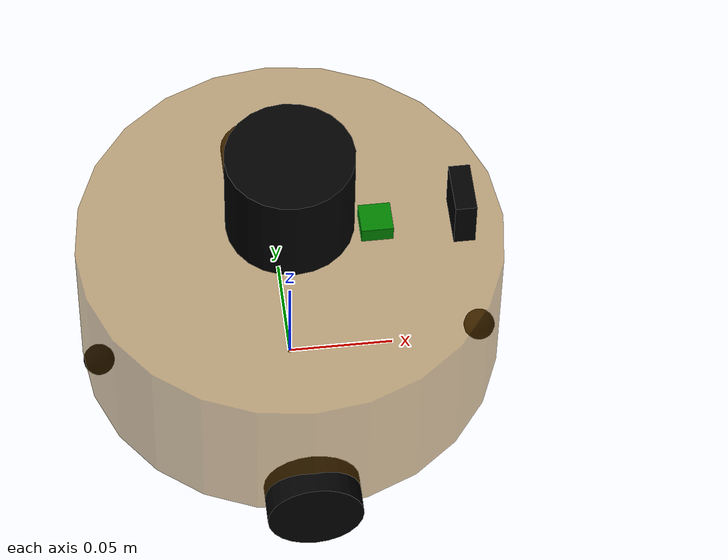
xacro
<!-- 组合小车底盘与摄像头与雷达 -->
<robot name="my_car_camera" xmlns:xacro="http://wiki.ros.org/xacro">
    <xacro:include filename="body.xacro" />
    <xacro:include filename="cam.xacro" />
    <xacro:include filename="laser.xacro" />
    <xacro:include filename="imu.xacro" />
</robot>

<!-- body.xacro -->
<!--
    使用 xacro 优化 URDF 版的小车底盘实现：

    实现思路:
    1.将一些常量、变量封装为 xacro:property
      比如:PI 值、小车底盘半径、离地间距、车轮半径、宽度 ....
    2.使用 宏 封装驱动轮以及支撑轮实现，调用相关宏生成驱动轮与支撑轮

-->
<!-- 根标签，必须声明 xmlns:xacro -->
<robot name="my_base" xmlns:xacro="http://www.ros.org/wiki/xacro">
    <!-- 封装变量、常量 -->
    <xacro:property name="PI" value="3.14159"/>
    <!-- 宏:黑色设置 -->
    <material name="black">
        <color rgba="0.0 0.0 0.0 1.0" />
    </material>
    <!-- 底盘属性 -->
    <xacro:property name="base_footprint_radius" value="0.001" /> <!-- base_footprint 半径  -->
    <xacro:property name="base_link_radius" value="0.1" /> <!-- base_link 半径 -->
    <xacro:property name="base_link_length" value="0.08" /> <!-- base_link 长 -->
    <xacro:property name="earth_space" value="0.015" /> <!-- 离地间距 -->

    <!-- 底盘 -->
    <link name="base_footprint">
      <visual>
        <geometry>
          <sphere radius="${base_footprint_radius}" />
        </geometry>
      </visual>
    </link>

    <link name="base_link">
      <visual>
        <geometry>
          <cylinder radius="${base_link_radius}" length="${base_link_length}" />
        </geometry>
        <origin xyz="0 0 0" rpy="0 0 0" />
        <material name="yellow">
          <color rgba="0.5 0.3 0.0 0.5" />
        </material>
      </visual>
    </link>

    <joint name="base_link2base_footprint" type="fixed">
      <parent link="base_footprint" />
      <child link="base_link" />
      <origin xyz="0 0 ${earth_space + base_link_length / 2 }" />
    </joint>

    <!-- 驱动轮 -->
    <!-- 驱动轮属性 -->
    <xacro:property name="wheel_radius" value="0.0225" /><!-- 半径 -->
    <xacro:property name="wheel_length" value="0.019" /><!-- 宽度 -->
    <!-- 驱动轮宏实现 -->
    <xacro:macro name="add_wheels" params="name flag">
      <link name="${name}_wheel">
        <visual>
          <geometry>
            <cylinder radius="${wheel_radius}" length="${wheel_length}" />
          </geometry>
          <origin xyz="0.0 0.0 0.0" rpy="${PI / 2} 0.0 0.0" />
          <material name="black" />
        </visual>
      </link>

      <joint name="${name}_wheel2base_link" type="continuous">
        <parent link="base_link" />
        <child link="${name}_wheel" />
        <origin xyz="0 ${flag * base_link_radius} ${-(earth_space + base_link_length / 2 - wheel_radius) }" />
        <axis xyz="0 1 0" />
      </joint>
    </xacro:macro>
    <xacro:add_wheels name="left" flag="1" />
    <xacro:add_wheels name="right" flag="-1" />
    <!-- 支撑轮 -->
    <!-- 支撑轮属性 -->
    <xacro:property name="support_wheel_radius" value="0.0075" /> <!-- 支撑轮半径 -->

    <!-- 支撑轮宏 -->
    <xacro:macro name="add_support_wheel" params="name flag" >
      <link name="${name}_wheel">
        <visual>
            <geometry>
                <sphere radius="${support_wheel_radius}" />
            </geometry>
            <origin xyz="0 0 0" rpy="0 0 0" />
            <material name="black" />
        </visual>
      </link>

      <joint name="${name}_wheel2base_link" type="continuous">
          <parent link="base_link" />
          <child link="${name}_wheel" />
          <origin xyz="${flag * (base_link_radius - support_wheel_radius)} 0 ${-(base_link_length / 2 + earth_space / 2)}" />
          <axis xyz="1 1 1" />
      </joint>
    </xacro:macro>

    <xacro:add_support_wheel name="front" flag="1" />
    <xacro:add_support_wheel name="back" flag="-1" />

</robot>

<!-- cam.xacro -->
<!-- 摄像头相关的 xacro 文件 -->
<robot name="my_camera" xmlns:xacro="http://wiki.ros.org/xacro">
    <!-- 摄像头属性 -->
    <xacro:property name="camera_length" value="0.01" /> <!-- 摄像头长度(x) -->
    <xacro:property name="camera_width" value="0.025" /> <!-- 摄像头宽度(y) -->
    <xacro:property name="camera_height" value="0.025" /> <!-- 摄像头高度(z) -->
    <xacro:property name="camera_x" value="0.08" /> <!-- 摄像头安装的x坐标 -->
    <xacro:property name="camera_y" value="0.0" /> <!-- 摄像头安装的y坐标 -->
    <xacro:property name="camera_z" value="${base_link_length / 2 + camera_height / 2}" /> <!-- 摄像头安装的z坐标:底盘高度 / 2 + 摄像头高度 / 2  -->

    <!-- 摄像头关节以及link -->
    <link name="usb_cam">
        <visual>
            <geometry>
                <box size="${camera_length} ${camera_width} ${camera_height}" />
            </geometry>
            <origin xyz="0.0 0.0 0.0" rpy="0.0 0.0 0.0" />
            <material name="black" />
        </visual>
    </link>

    <joint name="camera2base_link" type="fixed">
        <parent link="base_link" />
        <child link="usb_cam" />
        <origin xyz="${camera_x} ${camera_y} ${camera_z}" />
    </joint>
</robot>

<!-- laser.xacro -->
<!--
    小车底盘添加雷达
-->
<robot name="my_laser" xmlns:xacro="http://wiki.ros.org/xacro">

    <!-- 雷达支架 -->
    <xacro:property name="support_length" value="0.01" /> <!-- 支架长度 -->
    <xacro:property name="support_radius" value="0.01" /> <!-- 支架半径 -->
    <xacro:property name="support_x" value="0.0" /> <!-- 支架安装的x坐标 -->
    <xacro:property name="support_y" value="0.0" /> <!-- 支架安装的y坐标 -->
    <xacro:property name="support_z" value="${base_link_length / 2 + support_length / 2}" /> <!-- 支架安装的z坐标:底盘高度 / 2 + 支架高度 / 2  -->

    <link name="support">
        <visual>
            <geometry>
                <cylinder radius="${support_radius}" length="${support_length}" />
            </geometry>
            <origin xyz="0.0 0.0 0.0" rpy="0.0 0.0 0.0" />
            <material name="red">
                <color rgba="0.8 0.2 0.0 0.8" />
            </material>
        </visual>
    </link>

    <joint name="support2base_link" type="fixed">
        <parent link="base_link" />
        <child link="support" />
        <origin xyz="${support_x} ${support_y} ${support_z}" />
    </joint>

    <!-- 雷达属性 -->
    <xacro:property name="laser_length" value="0.05" /> <!-- 雷达长度 -->
    <xacro:property name="laser_radius" value="0.03" /> <!-- 雷达半径 -->
    <xacro:property name="laser_x" value="0.0" /> <!-- 雷达安装的x坐标 -->
    <xacro:property name="laser_y" value="0.0" /> <!-- 雷达安装的y坐标 -->
    <xacro:property name="laser_z" value="${support_length / 2 + laser_length / 2}" /> <!-- 雷达安装的z坐标:支架高度 / 2 + 雷达高度 / 2  -->

    <!-- 雷达关节以及link -->
    <link name="laser">
        <visual>
            <geometry>
                <cylinder radius="${laser_radius}" length="${laser_length}" />
            </geometry>
            <origin xyz="0.0 0.0 0.0" rpy="0.0 0.0 0.0" />
            <material name="black" />
        </visual>
    </link>

    <joint name="laser2support" type="fixed">
        <parent link="support" />
        <child link="laser" />
        <origin xyz="${laser_x} ${laser_y} ${laser_z}" />
    </joint>
</robot>

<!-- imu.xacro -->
<!-- IMU相关的 xacro 文件 -->
<robot name="my_imu" xmlns:xacro="http://wiki.ros.org/xacro">
    <!-- IMU属性 -->
    <xacro:property name="imu_length" value="0.015" /> <!-- IMU长度(x) -->
    <xacro:property name="imu_width" value="0.015" /> <!-- IMU宽度(y) -->
    <xacro:property name="imu_height" value="0.008" /> <!-- IMU高度(z) -->
    <xacro:property name="imu_x" value="0.04" /> <!-- IMU安装的x坐标 -->
    <xacro:property name="imu_y" value="0.0" /> <!-- IMU安装的y坐标 -->
    <xacro:property name="imu_z" value="${base_link_length / 2 + imu_height / 2}" /> <!-- IMU安装的z坐标:底盘高度 / 2 + IMU高度 / 2  -->

    <!-- IMU关节以及link -->
    <link name="imu">
        <visual>
            <geometry>
                <box size="${imu_length} ${imu_width} ${imu_height}" />
            </geometry>
            <origin xyz="0.0 0.0 0.0" rpy="0.0 0.0 0.0" />
            <material name="green">
                <color rgba="0.0 0.5 0.0 1.0" />
            </material>
        </visual>
    </link>

    <joint name="imu2base_link" type="fixed">
        <parent link="base_link" />
        <child link="imu" />
        <origin xyz="${imu_x} ${imu_y} ${imu_z}" />
    </joint>
</robot>
